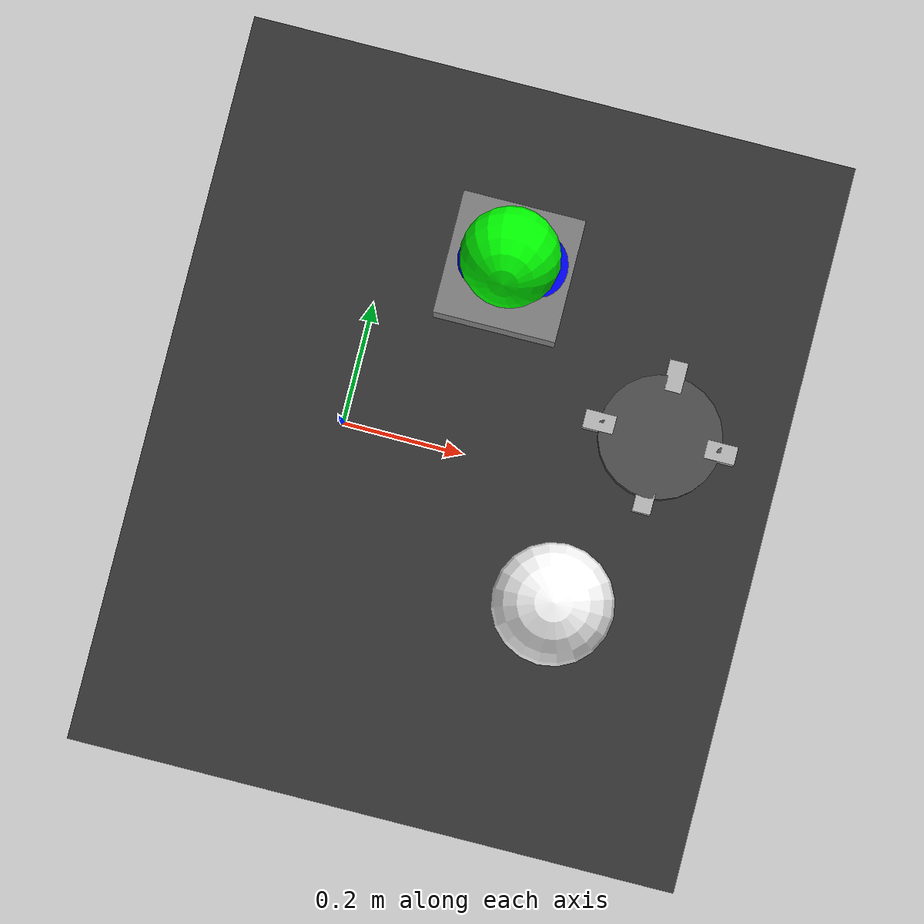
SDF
<?xml version="1.0" ?>
<!-- --- THE 3D SCANNING ROOM --- -->
<!-- This file creates the virtual world where the robot lives. -->

<sdf version="1.8">
  <world name="scan_world">

    <!-- STEP 1: Physics (Gravity and Time) -->
    <physics name="1ms" type="ignored">
      <max_step_size>0.001</max_step_size>
      <real_time_factor>1.0</real_time_factor>
    </physics>

    <!-- Secret computer plugins that make things fall and collide -->
    <plugin
      filename="gz-sim-physics-system"
      name="gz::sim::systems::Physics">
    </plugin>
    <plugin
      filename="gz-sim-sensors-system"
      name="gz::sim::systems::Sensors">
      <render_engine>ogre2</render_engine>
    </plugin>
    <plugin
      filename="gz-sim-user-commands-system"
      name="gz::sim::systems::UserCommands">
    </plugin>
    <plugin
      filename="gz-sim-scene-broadcaster-system"
      name="gz::sim::systems::SceneBroadcaster">
    </plugin>

    <!-- STEP 2: The Sun (Light) -->
    <light type="directional" name="sun">
      <cast_shadows>true</cast_shadows>
      <pose>0 0 10 0 0 0</pose>
      <diffuse>0.8 0.8 0.8 1</diffuse>
      <specular>0.2 0.2 0.2 1</specular>
      <attenuation>
        <range>1000</range>
        <constant>0.9</constant>
        <linear>0.01</linear>
        <quadratic>0.001</quadratic>
      </attenuation>
      <direction>-0.5 0.1 -0.9</direction>
    </light>

    <!-- STEP 3: The Floor -->
    <model name="ground_plane">
      <static>true</static>
      <link name="link">
        <collision name="collision">
          <geometry>
            <plane>
              <normal>0 0 1</normal>
              <size>100 100</size>
            </plane>
          </geometry>
        </collision>
        <visual name="visual">
          <geometry>
            <plane>
              <normal>0 0 1</normal>
              <size>100 100</size>
            </plane>
          </geometry>
          <material>
            <ambient>0.8 0.8 0.8 1</ambient>
            <diffuse>0.8 0.8 0.8 1</diffuse>
            <specular>0.8 0.8 0.8 1</specular>
          </material>
        </visual>
      </link>
    </model>

    <!-- STEP 4: The Workbench (Robot's Table) -->
    <model name="workbench">
      <static>true</static>
      <pose>0.2 0.0 0.025 0 0 0</pose>
      <link name="table_link">
        <visual name="surface">
          <geometry><box><size>1.0 1.2 0.05</size></box></geometry>
          <material><ambient>0.2 0.2 0.2 1</ambient><diffuse>0.2 0.2 0.2 1</diffuse></material>
        </visual>
      </link>
    </model>

    <!-- STEP 5: Objects to Scan -->

    <!-- Object A: A colorful complex shape (Sculpture) -->
    <model name="sculpture">
      <pose>0.2 0.3 0.1 0 0 0</pose> <!-- Repositioned on the table -->
      <static>true</static>
      <link name="base">
        <visual name="visual">
          <geometry><box><size>0.2 0.2 0.1</size></box></geometry>
          <material><ambient>0.5 0.5 0.5 1</ambient><diffuse>0.5 0.5 0.5 1</diffuse></material>
        </visual>
      </link>
      <link name="part1">
        <pose>0 0 0.1 0 0.5 0</pose>
        <visual name="visual">
          <geometry><cylinder><radius>0.05</radius><length>0.2</length></cylinder></geometry>
          <material><ambient>0 0 1 1</ambient><diffuse>0 0 1 1</diffuse></material> <!-- Blue -->
        </visual>
      </link>
      <link name="part2">
        <pose>0 0 0.2 0.7 0 0</pose>
        <visual name="visual">
          <geometry><sphere><radius>0.08</radius></sphere></geometry>
          <material><ambient>0 1 0 1</ambient><diffuse>0 1 0 1</diffuse></material> <!-- Green -->
        </visual>
      </link>
    </model>

    <!-- Object B: A white sphere (Bowl) -->
    <model name="bowl">
      <pose>0.4 -0.2 0.05 0 0 0</pose>
      <static>true</static>
      <link name="link">
        <visual name="visual">
          <geometry>
            <sphere><radius>0.1</radius></sphere>
          </geometry>
          <material><ambient>1 1 1 1</ambient><diffuse>1 1 1 1</diffuse></material>
        </visual>
      </link>
    </model>

    <!-- Object C: A 3D industrial gear shape -->
    <model name="industrial_gear">
      <pose>0.5 0.1 0.07 0 0 0</pose>
      <static>true</static>
      <link name="link">
        <visual name="base">
          <geometry><cylinder><radius>0.1</radius><length>0.04</length></cylinder></geometry>
          <material><ambient>0.3 0.3 0.3 1</ambient><diffuse>0.3 0.3 0.3 1</diffuse></material>
        </visual>
        <visual name="tooth1">
          <pose>0.1 0 0 0 0 0</pose>
          <geometry><box><size>0.05 0.03 0.04</size></box></geometry>
        </visual>
        <visual name="tooth2">
          <pose>-0.1 0 0 0 0 0</pose>
          <geometry><box><size>0.05 0.03 0.04</size></box></geometry>
        </visual>
        <visual name="tooth3">
          <pose>0 0.1 0 0 0 1.57</pose>
          <geometry><box><size>0.05 0.03 0.04</size></box></geometry>
        </visual>
        <visual name="tooth4">
          <pose>0 -0.1 0 0 0 1.57</pose>
          <geometry><box><size>0.05 0.03 0.04</size></box></geometry>
        </visual>
      </link>
    </model>
  </world>
</sdf>
